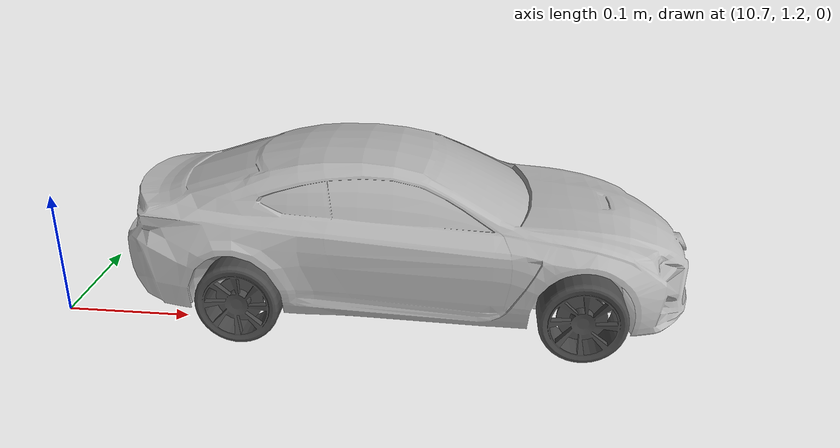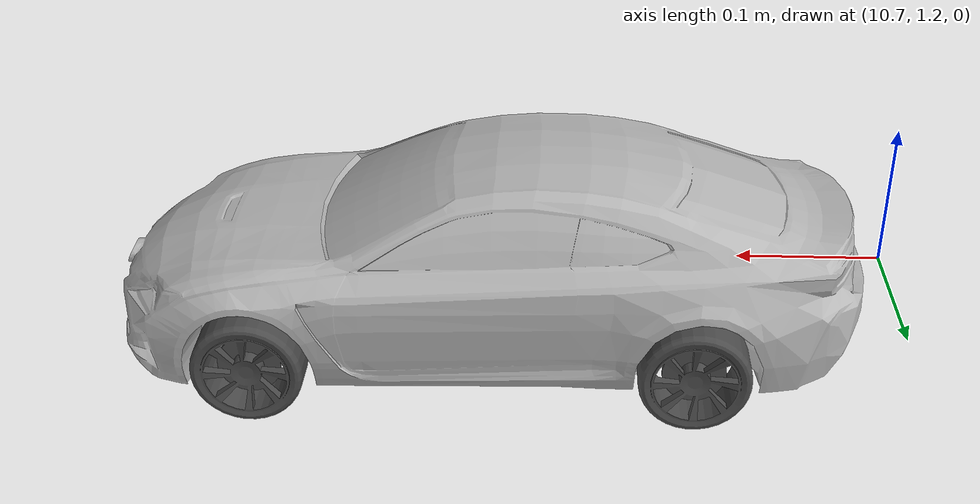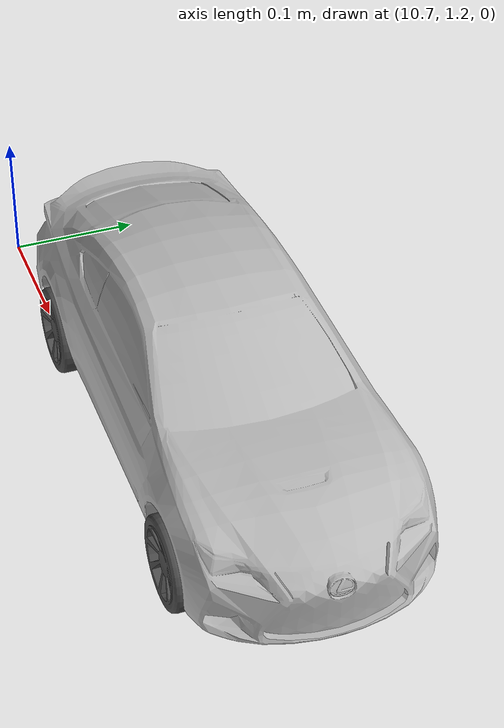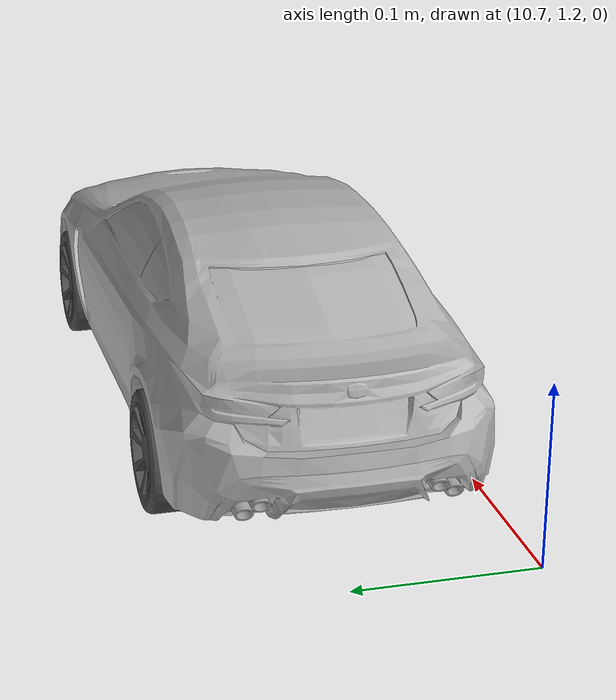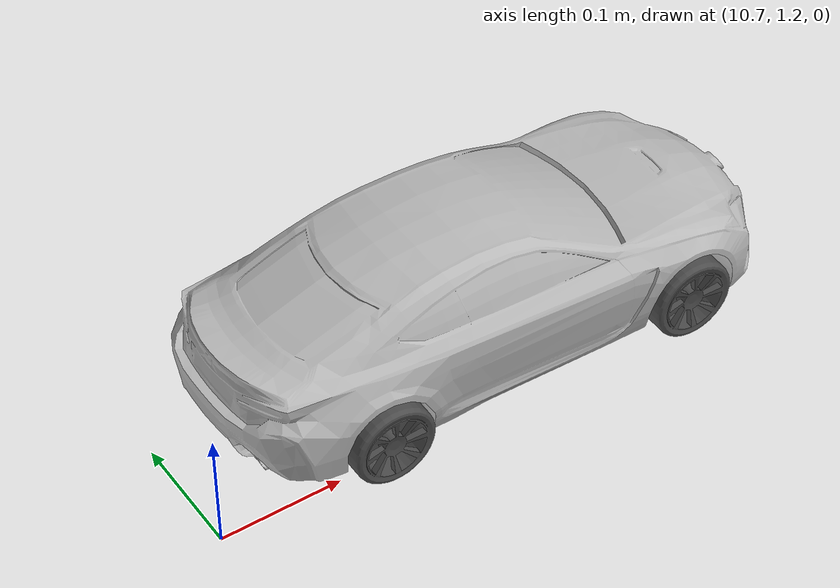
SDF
<sdf version="1.7">
 <world name="bfmc_official">
  <model name="automobile_obstacle_2">
   <static>1</static>
   <frame name="chassis::__model__" attached_to="chassis::link">
    <pose relative_to="__model__">0 0 0 0 -0 0</pose>
   </frame>
   <link name="chassis::link">
    <inertial>
     <mass>0.26244</mass>
     <inertia>
      <ixx>0.00283444</ixx>
      <ixy>0</ixy>
      <ixz>0</ixz>
      <iyy>0.00039867</iyy>
      <iyz>0</iyz>
      <izz>0.00323293</izz>
     </inertia>
    </inertial>
    <pose relative_to="chassis::__model__">0 0 0 0 -0 0</pose>
    <visual name="visual">
     <pose>0 0 -0.0065 0 -0 0</pose>
     <geometry><mesh><uri>model://chassis/meshes/chassisV5.dae</uri><scale>1 1 1</scale></mesh></geometry>
     <material>
      <lighting>1</lighting>
      <shader type="vertex"><normal_map>__default__</normal_map></shader>
      <ambient>0.6 0.6 0.6 1</ambient>
      <diffuse>0.85 0.85 0.85 1</diffuse>
      <specular>0.6 0.6 0.6 1</specular>
      <emissive>0 0 0 1</emissive>
     </material>
    </visual>
    <collision name="collision">
     <geometry><box><size>0.135 0.36 0.002</size></box></geometry>
     <surface>
      <friction>
       <ode><mu>1</mu><mu2>1</mu2><fdir1>0 0 0</fdir1><slip1>0</slip1><slip2>0</slip2></ode>
       <torsional>
        <coefficient>1</coefficient>
        <patch_radius>0</patch_radius>
        <surface_radius>0</surface_radius>
        <use_patch_radius>1</use_patch_radius>
        <ode><slip>0</slip></ode>
       </torsional>
      </friction>
      <bounce><restitution_coefficient>0</restitution_coefficient><threshold>1e+06</threshold></bounce>
      <contact>
       <collide_without_contact>0</collide_without_contact>
       <collide_without_contact_bitmask>1</collide_without_contact_bitmask>
       <collide_bitmask>1</collide_bitmask>
       <ode>
        <soft_cfm>0</soft_cfm>
        <soft_erp>0.2</soft_erp>
        <kp>1e+13</kp>
        <kd>1</kd>
        <max_vel>0.01</max_vel>
        <min_depth>0</min_depth>
       </ode>
       <bullet>
        <split_impulse>1</split_impulse>
        <split_impulse_penetration_threshold>-0.01</split_impulse_penetration_threshold>
        <soft_cfm>0</soft_cfm>
        <soft_erp>0.2</soft_erp>
        <kp>1e+13</kp>
        <kd>1</kd>
       </bullet>
      </contact>
     </surface>
    </collision>
   </link>
   <frame name="wheel_rear_left::__model__" attached_to="wheel_rear_left::link_rim">
    <pose relative_to="__model__">-0.152 0.081 0 0 -0 0</pose>
   </frame>
   <link name="wheel_rear_left::link_rim">
    <inertial>
     <mass>0.038</mass>
     <inertia>
      <ixx>1.283e-05</ixx>
      <ixy>0</ixy>
      <ixz>0</ixz>
      <iyy>1.283e-05</iyy>
      <iyz>0</iyz>
      <izz>2.069e-05</izz>
     </inertia>
    </inertial>
    <pose relative_to="wheel_rear_left::__model__">0 0 0 1.5708 -0 0</pose>
    <visual name="visual">
     <pose>0 0 0 -1.5708 0 0</pose>
     <geometry><mesh><uri>model://wheel_left/meshes/rim.dae</uri><scale>1 1 1</scale></mesh></geometry>
     <material>
      <lighting>1</lighting>
      <shader type="vertex"><normal_map>__default__</normal_map></shader>
      <ambient>0.2 0.2 0.2 1</ambient>
      <diffuse>0.3 0.3 0.3 1</diffuse>
      <specular>0.5 0.5 0.5 1</specular>
      <emissive>0 0 0 0</emissive>
     </material>
    </visual>
    <collision name="collision">
     <geometry><cylinder><radius>0.033</radius><length>0.028</length></cylinder></geometry>
     <surface>
      <friction>
       <ode><mu>0.7</mu><mu2>0.7</mu2><fdir1>0 0 0</fdir1><slip1>0</slip1><slip2>0</slip2></ode>
       <torsional>
        <coefficient>1</coefficient>
        <patch_radius>0</patch_radius>
        <surface_radius>0</surface_radius>
        <use_patch_radius>1</use_patch_radius>
        <ode><slip>0</slip></ode>
       </torsional>
      </friction>
      <bounce><restitution_coefficient>0</restitution_coefficient><threshold>1e+06</threshold></bounce>
      <contact>
       <collide_without_contact>0</collide_without_contact>
       <collide_without_contact_bitmask>1</collide_without_contact_bitmask>
       <collide_bitmask>1</collide_bitmask>
       <ode>
        <soft_cfm>0</soft_cfm>
        <soft_erp>0.2</soft_erp>
        <kp>1e+07</kp>
        <kd>1</kd>
        <max_vel>0.01</max_vel>
        <min_depth>0</min_depth>
       </ode>
       <bullet>
        <split_impulse>1</split_impulse>
        <split_impulse_penetration_threshold>-0.01</split_impulse_penetration_threshold>
        <soft_cfm>0</soft_cfm>
        <soft_erp>0.2</soft_erp>
        <kp>1e+07</kp>
        <kd>1</kd>
       </bullet>
      </contact>
     </surface>
    </collision>
   </link>
   <frame name="wheel_rear_right::__model__" attached_to="wheel_rear_right::link_rim">
    <pose relative_to="__model__">-0.152 -0.081 0 0 -0 0</pose>
   </frame>
   <link name="wheel_rear_right::link_rim">
    <inertial>
     <mass>0.038</mass>
     <inertia>
      <ixx>1.283e-05</ixx>
      <ixy>0</ixy>
      <ixz>0</ixz>
      <iyy>1.283e-05</iyy>
      <iyz>0</iyz>
      <izz>2.069e-05</izz>
     </inertia>
    </inertial>
    <pose relative_to="wheel_rear_right::__model__">0 0 0 1.5708 -0 0</pose>
    <visual name="visual">
     <pose>0 0 0 -1.5708 0 0</pose>
     <geometry><mesh><uri>model://wheel_right/meshes/rim.dae</uri><scale>1 1 1</scale></mesh></geometry>
     <material>
      <lighting>1</lighting>
      <shader type="vertex"><normal_map>__default__</normal_map></shader>
      <ambient>0.2 0.2 0.2 1</ambient>
      <diffuse>0.3 0.3 0.3 1</diffuse>
      <specular>0.5 0.5 0.5 1</specular>
      <emissive>0 0 0 0</emissive>
     </material>
    </visual>
    <collision name="collision">
     <geometry><cylinder><radius>0.033</radius><length>0.028</length></cylinder></geometry>
     <surface>
      <friction>
       <ode><mu>0.7</mu><mu2>0.7</mu2><fdir1>0 0 0</fdir1><slip1>0</slip1><slip2>0</slip2></ode>
       <torsional>
        <coefficient>1</coefficient>
        <patch_radius>0</patch_radius>
        <surface_radius>0</surface_radius>
        <use_patch_radius>1</use_patch_radius>
        <ode><slip>0</slip></ode>
       </torsional>
      </friction>
      <bounce><restitution_coefficient>0</restitution_coefficient><threshold>1e+06</threshold></bounce>
      <contact>
       <collide_without_contact>0</collide_without_contact>
       <collide_without_contact_bitmask>1</collide_without_contact_bitmask>
       <collide_bitmask>1</collide_bitmask>
       <ode>
        <soft_cfm>0</soft_cfm>
        <soft_erp>0.2</soft_erp>
        <kp>1e+07</kp>
        <kd>1</kd>
        <max_vel>0.01</max_vel>
        <min_depth>0</min_depth>
       </ode>
       <bullet>
        <split_impulse>1</split_impulse>
        <split_impulse_penetration_threshold>-0.01</split_impulse_penetration_threshold>
        <soft_cfm>0</soft_cfm>
        <soft_erp>0.2</soft_erp>
        <kp>1e+07</kp>
        <kd>1</kd>
       </bullet>
      </contact>
     </surface>
    </collision>
   </link>
   <frame name="steer_left::__model__" attached_to="steer_left::link_steer">
    <pose relative_to="__model__">0.112 0.0725 0 0 -0 0</pose>
   </frame>
   <link name="steer_left::link_steer">
    <inertial>
     <mass>0.001</mass>
     <inertia>
      <ixx>0.00014583</ixx>
      <ixy>0</ixy>
      <ixz>0</ixz>
      <iyy>0.00014583</iyy>
      <iyz>0</iyz>
      <izz>0.000125</izz>
     </inertia>
    </inertial>
    <pose relative_to="steer_left::__model__">0 0 0 1.5708 -0 0</pose>
    <visual name="visual">
     <geometry><cylinder><radius>0.001</radius><length>0.01</length></cylinder></geometry>
     <material>
      <lighting>1</lighting>
      <script><uri>file://media/materials/scripts/gazebo.material</uri><name>Gazebo/Grey</name></script>
      <shader type="vertex"><normal_map>__default__</normal_map></shader>
      <ambient>0.3 0.3 0.3 1</ambient>
      <diffuse>0.7 0.7 0.7 1</diffuse>
      <specular>0.01 0.01 0.01 1</specular>
      <emissive>0 0 0 1</emissive>
     </material>
    </visual>
    <collision name="collision">
     <geometry><cylinder><radius>0.001</radius><length>0.01</length></cylinder></geometry>
     <surface>
      <friction>
       <ode><mu>1</mu><mu2>1</mu2><fdir1>0 0 0</fdir1><slip1>0</slip1><slip2>0</slip2></ode>
       <torsional>
        <coefficient>1</coefficient>
        <patch_radius>0</patch_radius>
        <surface_radius>0</surface_radius>
        <use_patch_radius>1</use_patch_radius>
        <ode><slip>0</slip></ode>
       </torsional>
      </friction>
      <bounce><restitution_coefficient>0</restitution_coefficient><threshold>1e+06</threshold></bounce>
      <contact>
       <collide_without_contact>0</collide_without_contact>
       <collide_without_contact_bitmask>1</collide_without_contact_bitmask>
       <collide_bitmask>1</collide_bitmask>
       <ode>
        <soft_cfm>0</soft_cfm>
        <soft_erp>0.2</soft_erp>
        <kp>1e+13</kp>
        <kd>1</kd>
        <max_vel>0.01</max_vel>
        <min_depth>0</min_depth>
       </ode>
       <bullet>
        <split_impulse>1</split_impulse>
        <split_impulse_penetration_threshold>-0.01</split_impulse_penetration_threshold>
        <soft_cfm>0</soft_cfm>
        <soft_erp>0.2</soft_erp>
        <kp>1e+13</kp>
        <kd>1</kd>
       </bullet>
      </contact>
     </surface>
    </collision>
   </link>
   <frame name="steer_right::__model__" attached_to="steer_right::link_steer">
    <pose relative_to="__model__">0.112 -0.0725 0 0 -0 0</pose>
   </frame>
   <link name="steer_right::link_steer">
    <inertial>
     <mass>0.001</mass>
     <inertia>
      <ixx>0.00014583</ixx>
      <ixy>0</ixy>
      <ixz>0</ixz>
      <iyy>0.00014583</iyy>
      <iyz>0</iyz>
      <izz>0.000125</izz>
     </inertia>
    </inertial>
    <pose relative_to="steer_right::__model__">0 0 0 1.5708 -0 0</pose>
    <visual name="visual">
     <geometry><cylinder><radius>0.001</radius><length>0.01</length></cylinder></geometry>
     <material>
      <lighting>1</lighting>
      <script><uri>file://media/materials/scripts/gazebo.material</uri><name>Gazebo/Grey</name></script>
      <shader type="vertex"><normal_map>__default__</normal_map></shader>
      <ambient>0.3 0.3 0.3 1</ambient>
      <diffuse>0.7 0.7 0.7 1</diffuse>
      <specular>0.01 0.01 0.01 1</specular>
      <emissive>0 0 0 1</emissive>
     </material>
    </visual>
    <collision name="collision">
     <geometry><cylinder><radius>0.001</radius><length>0.01</length></cylinder></geometry>
     <surface>
      <friction>
       <ode><mu>1</mu><mu2>1</mu2><fdir1>0 0 0</fdir1><slip1>0</slip1><slip2>0</slip2></ode>
       <torsional>
        <coefficient>1</coefficient>
        <patch_radius>0</patch_radius>
        <surface_radius>0</surface_radius>
        <use_patch_radius>1</use_patch_radius>
        <ode><slip>0</slip></ode>
       </torsional>
      </friction>
      <bounce><restitution_coefficient>0</restitution_coefficient><threshold>1e+06</threshold></bounce>
      <contact>
       <collide_without_contact>0</collide_without_contact>
       <collide_without_contact_bitmask>1</collide_without_contact_bitmask>
       <collide_bitmask>1</collide_bitmask>
       <ode>
        <soft_cfm>0</soft_cfm>
        <soft_erp>0.2</soft_erp>
        <kp>1e+13</kp>
        <kd>1</kd>
        <max_vel>0.01</max_vel>
        <min_depth>0</min_depth>
       </ode>
       <bullet>
        <split_impulse>1</split_impulse>
        <split_impulse_penetration_threshold>-0.01</split_impulse_penetration_threshold>
        <soft_cfm>0</soft_cfm>
        <soft_erp>0.2</soft_erp>
        <kp>1e+13</kp>
        <kd>1</kd>
       </bullet>
      </contact>
     </surface>
    </collision>
   </link>
   <frame name="wheel_front_left::__model__" attached_to="wheel_front_left::link_rim">
    <pose relative_to="__model__">0.118 0.081 0 0 -0 0</pose>
   </frame>
   <link name="wheel_front_left::link_rim">
    <inertial>
     <mass>0.038</mass>
     <inertia>
      <ixx>1.283e-05</ixx>
      <ixy>0</ixy>
      <ixz>0</ixz>
      <iyy>1.283e-05</iyy>
      <iyz>0</iyz>
      <izz>2.069e-05</izz>
     </inertia>
    </inertial>
    <pose relative_to="wheel_front_left::__model__">0 0 0 1.5708 -0 0</pose>
    <visual name="visual">
     <pose>0 0 0 -1.5708 0 0</pose>
     <geometry><mesh><uri>model://wheel_left/meshes/rim.dae</uri><scale>1 1 1</scale></mesh></geometry>
     <material>
      <lighting>1</lighting>
      <shader type="vertex"><normal_map>__default__</normal_map></shader>
      <ambient>0.2 0.2 0.2 1</ambient>
      <diffuse>0.3 0.3 0.3 1</diffuse>
      <specular>0.5 0.5 0.5 1</specular>
      <emissive>0 0 0 0</emissive>
     </material>
    </visual>
    <collision name="collision">
     <geometry><cylinder><radius>0.033</radius><length>0.028</length></cylinder></geometry>
     <surface>
      <friction>
       <ode><mu>0.7</mu><mu2>0.7</mu2><fdir1>0 0 0</fdir1><slip1>0</slip1><slip2>0</slip2></ode>
       <torsional>
        <coefficient>1</coefficient>
        <patch_radius>0</patch_radius>
        <surface_radius>0</surface_radius>
        <use_patch_radius>1</use_patch_radius>
        <ode><slip>0</slip></ode>
       </torsional>
      </friction>
      <bounce><restitution_coefficient>0</restitution_coefficient><threshold>1e+06</threshold></bounce>
      <contact>
       <collide_without_contact>0</collide_without_contact>
       <collide_without_contact_bitmask>1</collide_without_contact_bitmask>
       <collide_bitmask>1</collide_bitmask>
       <ode>
        <soft_cfm>0</soft_cfm>
        <soft_erp>0.2</soft_erp>
        <kp>1e+07</kp>
        <kd>1</kd>
        <max_vel>0.01</max_vel>
        <min_depth>0</min_depth>
       </ode>
       <bullet>
        <split_impulse>1</split_impulse>
        <split_impulse_penetration_threshold>-0.01</split_impulse_penetration_threshold>
        <soft_cfm>0</soft_cfm>
        <soft_erp>0.2</soft_erp>
        <kp>1e+07</kp>
        <kd>1</kd>
       </bullet>
      </contact>
     </surface>
    </collision>
   </link>
   <frame name="wheel_front_right::__model__" attached_to="wheel_front_right::link_rim">
    <pose relative_to="__model__">0.118 -0.081 0 0 -0 0</pose>
   </frame>
   <link name="wheel_front_right::link_rim">
    <inertial>
     <mass>0.038</mass>
     <inertia>
      <ixx>1.283e-05</ixx>
      <ixy>0</ixy>
      <ixz>0</ixz>
      <iyy>1.283e-05</iyy>
      <iyz>0</iyz>
      <izz>2.069e-05</izz>
     </inertia>
    </inertial>
    <pose relative_to="wheel_front_right::__model__">0 0 0 1.5708 -0 0</pose>
    <visual name="visual">
     <pose>0 0 0 -1.5708 0 0</pose>
     <geometry><mesh><uri>model://wheel_right/meshes/rim.dae</uri><scale>1 1 1</scale></mesh></geometry>
     <material>
      <lighting>1</lighting>
      <shader type="vertex"><normal_map>__default__</normal_map></shader>
      <ambient>0.2 0.2 0.2 1</ambient>
      <diffuse>0.3 0.3 0.3 1</diffuse>
      <specular>0.5 0.5 0.5 1</specular>
      <emissive>0 0 0 0</emissive>
     </material>
    </visual>
    <collision name="collision">
     <geometry><cylinder><radius>0.033</radius><length>0.028</length></cylinder></geometry>
     <surface>
      <friction>
       <ode><mu>0.7</mu><mu2>0.7</mu2><fdir1>0 0 0</fdir1><slip1>0</slip1><slip2>0</slip2></ode>
       <torsional>
        <coefficient>1</coefficient>
        <patch_radius>0</patch_radius>
        <surface_radius>0</surface_radius>
        <use_patch_radius>1</use_patch_radius>
        <ode><slip>0</slip></ode>
       </torsional>
      </friction>
      <bounce><restitution_coefficient>0</restitution_coefficient><threshold>1e+06</threshold></bounce>
      <contact>
       <collide_without_contact>0</collide_without_contact>
       <collide_without_contact_bitmask>1</collide_without_contact_bitmask>
       <collide_bitmask>1</collide_bitmask>
       <ode>
        <soft_cfm>0</soft_cfm>
        <soft_erp>0.2</soft_erp>
        <kp>1e+07</kp>
        <kd>1</kd>
        <max_vel>0.01</max_vel>
        <min_depth>0</min_depth>
       </ode>
       <bullet>
        <split_impulse>1</split_impulse>
        <split_impulse_penetration_threshold>-0.01</split_impulse_penetration_threshold>
        <soft_cfm>0</soft_cfm>
        <soft_erp>0.2</soft_erp>
        <kp>1e+07</kp>
        <kd>1</kd>
       </bullet>
      </contact>
     </surface>
    </collision>
   </link>
   <frame name="car_body::__model__" attached_to="car_body::link">
    <pose relative_to="__model__">-0.024 0 -0.028 0 -0 0</pose>
   </frame>
   <link name="car_body::link">
    <inertial>
     <mass>1</mass>
     <inertia>
      <ixx>0.166667</ixx>
      <ixy>0</ixy>
      <ixz>0</ixz>
      <iyy>0.166667</iyy>
      <iyz>0</iyz>
      <izz>0.166667</izz>
     </inertia>
    </inertial>
    <pose relative_to="car_body::__model__">0 -0 0 0 -0 0</pose>
    <visual name="visual">
     <geometry><mesh><uri>model://car_body/meshes/CarBody.dae</uri><scale>1 1 1</scale></mesh></geometry>
     <material>
      <script>
       <uri>model://car_body/materials/scripts</uri>
       <uri>model://car_body/materials/textures</uri>
       <name>CarBody/Image</name>
      </script>
     </material>
    </visual>
   </link>
   <static>0</static>
   <joint name="joint_leftrear_rim" type="fixed">
    <parent>chassis::link</parent>
    <child>wheel_rear_left::link_rim</child>
   </joint>
   <joint name="joint_rightrear_rim" type="fixed">
    <parent>chassis::link</parent>
    <child>wheel_rear_right::link_rim</child>
   </joint>
   <joint name="joint_rightfront_rim" type="fixed">
    <parent>chassis::link</parent>
    <child>wheel_front_right::link_rim</child>
   </joint>
   <joint name="joint_leftfront_rim" type="fixed">
    <parent>chassis::link</parent>
    <child>wheel_front_left::link_rim</child>
   </joint>
   <joint name="joint_body" type="fixed"><parent>chassis::link</parent><child>car_body::link</child></joint>
   <pose>10.9954 1.28412 0.016283 0 -0 0</pose>
  </model>
 </world>
</sdf>
